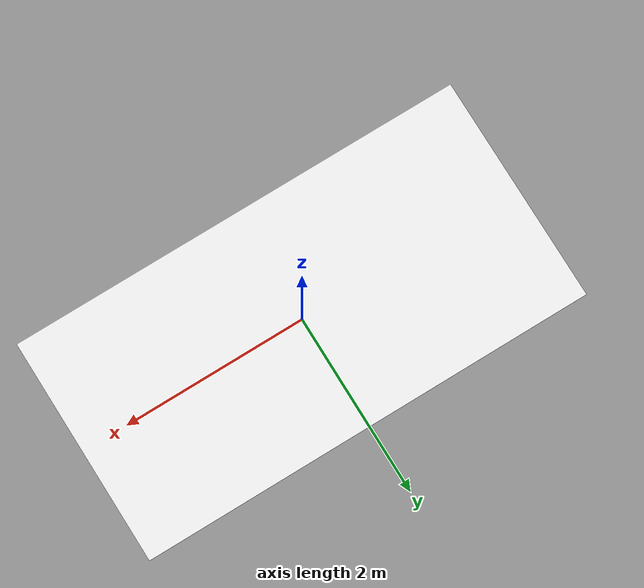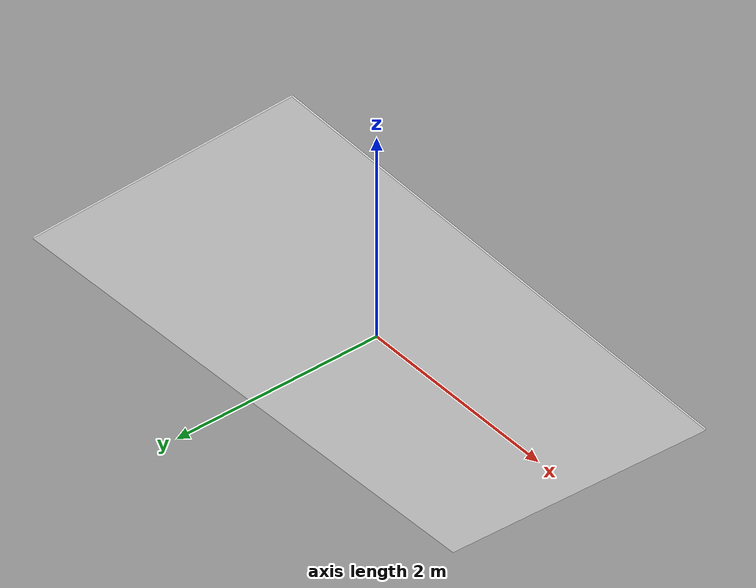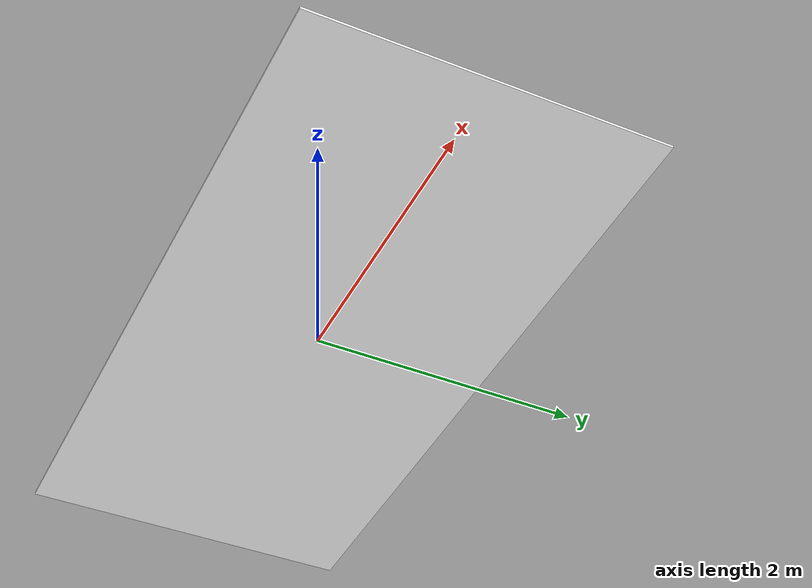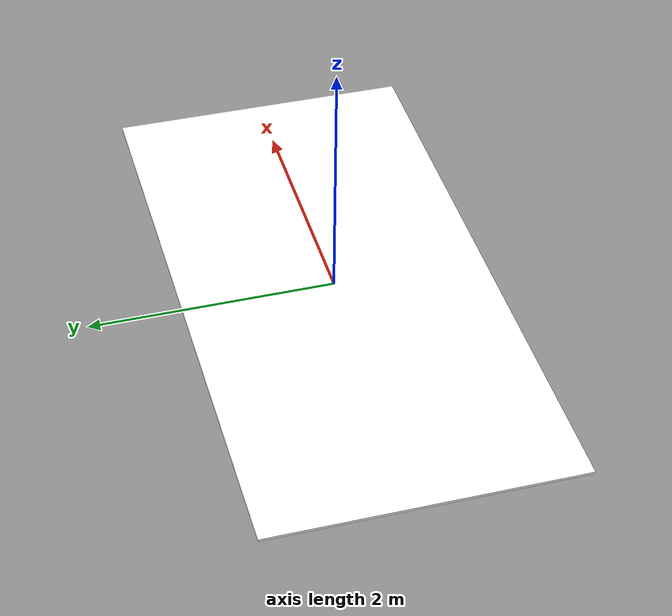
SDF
<?xml version="1.0"?>
<sdf version="1.6">
  <model name="parking_slot_marker">
    <static>true</static>
    <link name="marker">
      <pose>0 0 0.01 0 0 0</pose>

      <visual name="visual">
        <geometry>
          <box>
            <size>5.0 2.5 0.02</size>
          </box>
        </geometry>
        <material>
          <ambient>1.0 1.0 1.0 1</ambient>
          <diffuse>1.0 1.0 1.0 1</diffuse>
        </material>
      </visual>

      <!-- No collision — this is a painted line, not a physical wall -->
    </link>
  </model>
</sdf>
